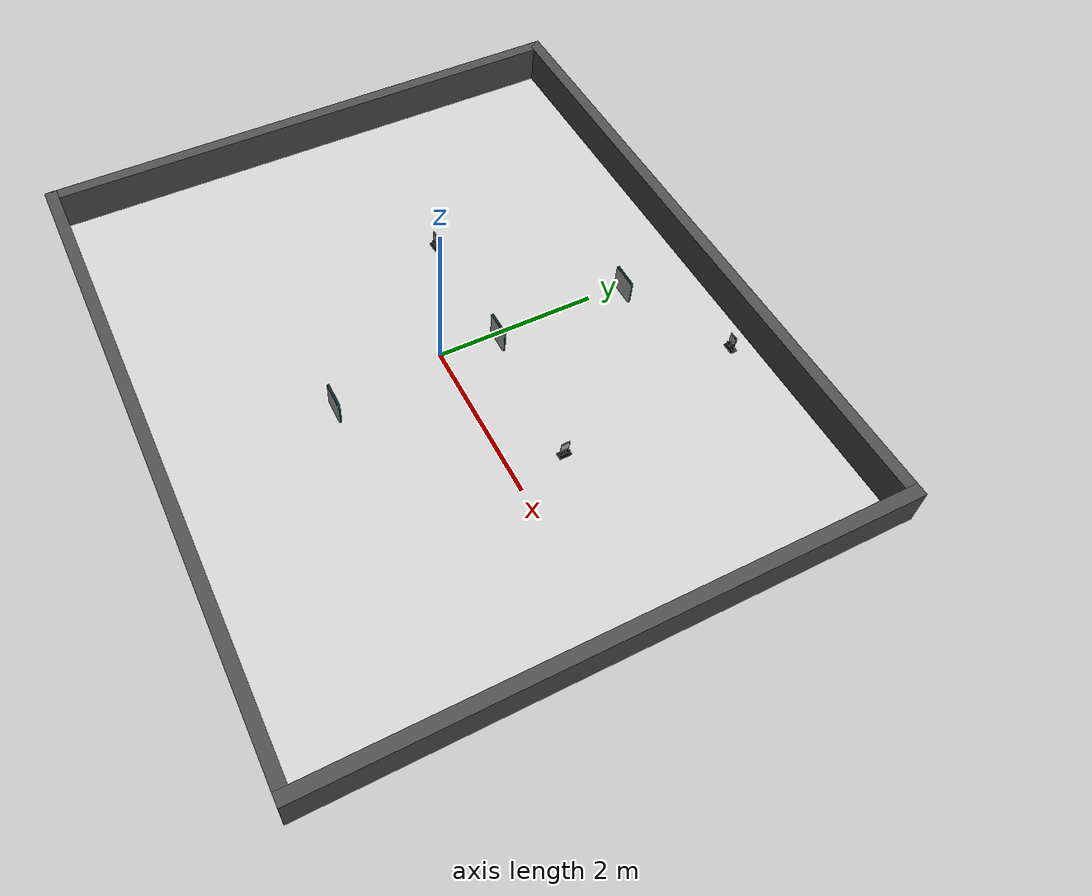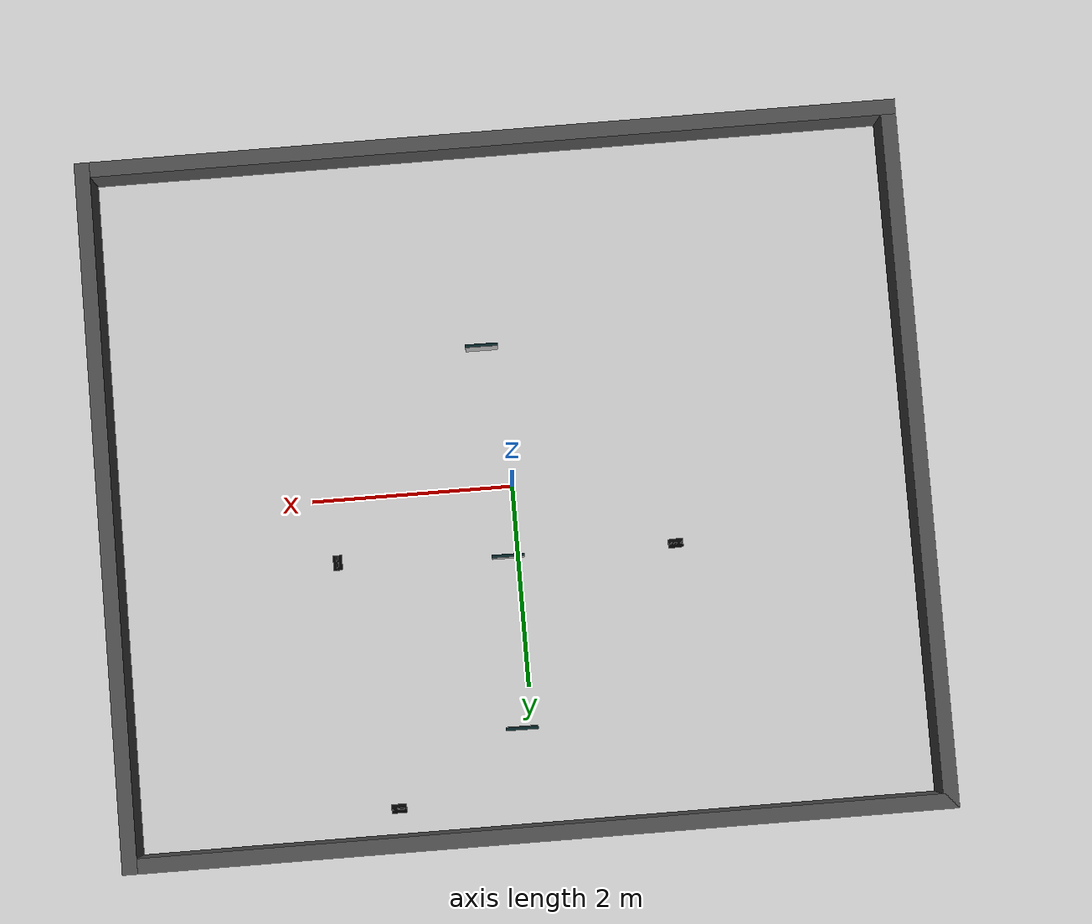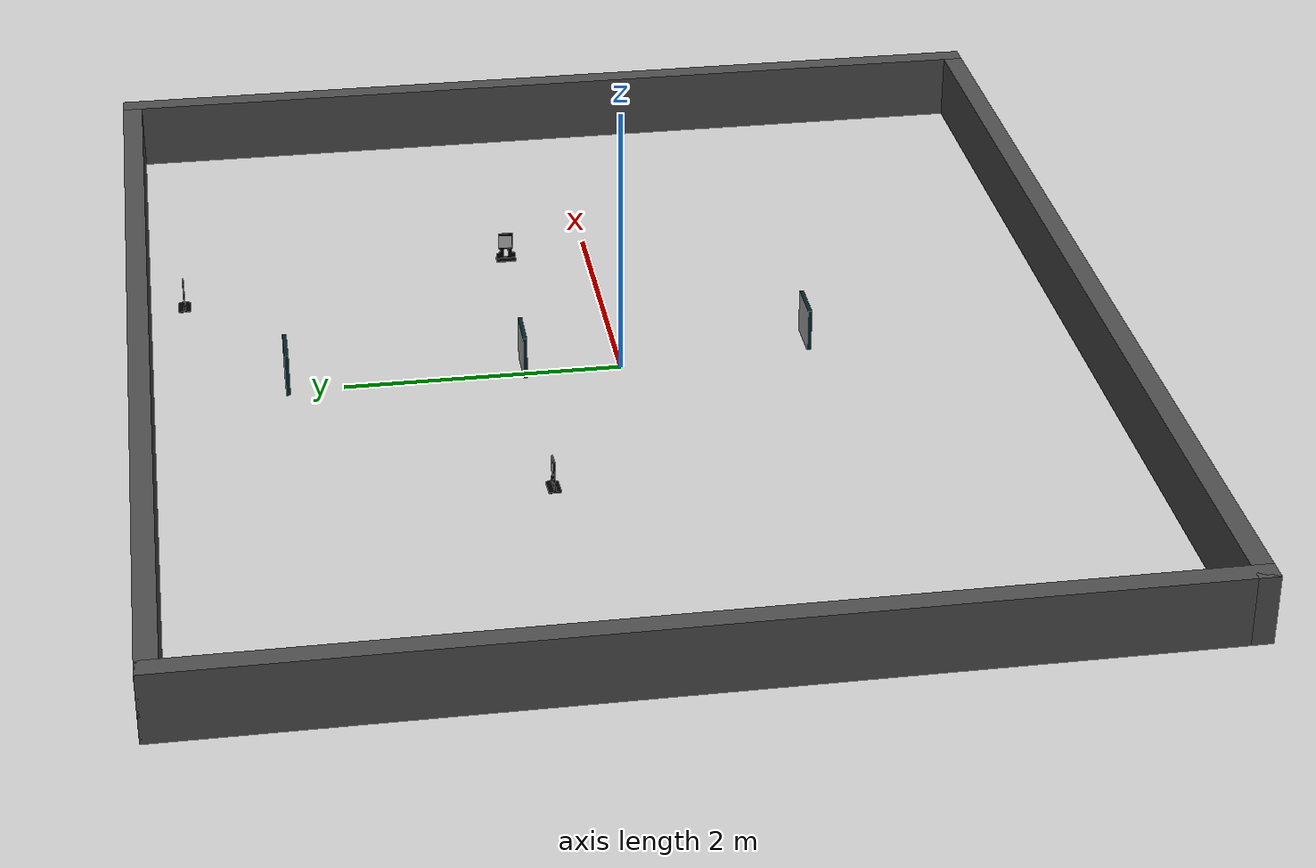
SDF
<sdf version="1.4">
 <world name="pista24B">
  <scene><ambient>0.8 0.8 0.8 1</ambient><background>0.7 0.7 0.7 1</background><shadows>true</shadows></scene>
  <include><uri>model://sun</uri><pose>-1.0 2.0 1.0 0 0 0</pose></include>
  <include><uri>model://Floors/Pista24B</uri></include>
  <include><uri>model://Walls/paredes_sala</uri><pose>4 0 0 0 0 0</pose></include>
  <include><uri>model://Creepers/toten_100</uri><pose>-1.5 0.7 0 0 0 -3.1000450</pose></include>
  <include><uri>model://Creepers/toten_150</uri><pose>1.3 3.1 0 0 0 0</pose></include>
  <include><uri>model://Creepers/toten_250</uri><pose>1.8 0.7 0 0 0 -1.554625</pose></include>
  <include><uri>model://Yolo/bicycle</uri><pose>0.2 -1.4 0 0 0 1.563530</pose></include>
  <include><uri>model://Yolo/cat</uri><pose>0.1 0.7 0 0 0 1.563530</pose></include>
  <include><uri>model://Yolo/bird</uri><pose>0.1 2.4 0 0 0 1.563530</pose></include>
  <physics type="ode">
   <real_time_update_rate>1000.0</real_time_update_rate>
   <max_step_size>0.001</max_step_size>
   <real_time_factor>1</real_time_factor>
   <ode>
    <solver>
     <type>quick</type>
     <iters>150</iters>
     <precon_iters>0</precon_iters>
     <sor>1.400000</sor>
     <use_dynamic_moi_rescaling>1</use_dynamic_moi_rescaling>
    </solver>
    <constraints>
     <cfm>0.00001</cfm>
     <erp>0.2</erp>
     <contact_max_correcting_vel>2000.000000</contact_max_correcting_vel>
     <contact_surface_layer>0.01000</contact_surface_layer>
    </constraints>
   </ode>
  </physics>
 </world>
</sdf>

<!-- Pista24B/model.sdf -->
<sdf version="1.6">
  <model name="pista24B">
    <static>true</static>
    <link name="course_link">
      <collision name="course_collision">
        <geometry>
          <plane>
            <normal>0 0 1</normal>
            <size>8 7</size>
          </plane>
        </geometry>
        <surface>
          <friction>
            <ode>
              <mu>100</mu>
              <mu2>50</mu2>
            </ode>
          </friction>
        </surface>
      </collision>
      <visual name="course_visual">
        <cast_shadows>true</cast_shadows>
        <geometry>
	        <plane>
            <normal>0 0 1</normal>
            <size>8 7</size>
          </plane>
        </geometry>
	      <material>
          <script>
            <uri>model://Floors/Pista24B/materials/scripts</uri>
            <uri>model://Floors/Pista24B/materials/textures</uri>
            <name>pisosala</name>
          </script>
        </material>
      </visual>
    </link>
  </model>
</sdf>

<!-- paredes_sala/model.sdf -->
<sdf version='1.7'>
  <model name='parede'>
    <link name='Wall_0'>
      <pose>-4.075 -3.425 0.25 0 0 0</pose>
      <self_collide>0</self_collide>
      <enable_wind>0</enable_wind>
      <kinematic>0</kinematic>
      <visual name='Wall_0_Visual'>
        <geometry>
          <box>
            <size>8 0.15 0.5</size>
          </box>
        </geometry>
        <material>
          <script>
            <uri>file://media/materials/scripts/gazebo.material</uri>
            <name>Gazebo/DarkGrey</name>
          </script>
          <ambient>0.5 0.5 0.5 1</ambient>
          <diffuse>1 1 1 1</diffuse>
          <specular>0.2 0.2 0.2 1</specular>
          <emissive>0 0 0 1</emissive>
          <shader type='pixel'/>
        </material>
      </visual>
      <collision name='Wall_0_Collision'>
        <laser_retro>0</laser_retro>
        <max_contacts>10</max_contacts>
        <geometry>
          <box>
            <size>8 0.15 0.5</size>
          </box>
        </geometry>
        <surface>
          <friction>
            <ode>
              <mu>1</mu>
              <mu2>1</mu2>
              <fdir1>0 0 0</fdir1>
              <slip1>0</slip1>
              <slip2>0</slip2>
            </ode>
            <torsional>
              <coefficient>1</coefficient>
              <patch_radius>0</patch_radius>
              <surface_radius>0</surface_radius>
              <use_patch_radius>1</use_patch_radius>
              <ode>
                <slip>0</slip>
              </ode>
            </torsional>
          </friction>
          <bounce>
            <restitution_coefficient>0</restitution_coefficient>
            <threshold>1e+06</threshold>
          </bounce>
          <contact>
            <collide_without_contact>0</collide_without_contact>
            <collide_without_contact_bitmask>1</collide_without_contact_bitmask>
            <collide_bitmask>1</collide_bitmask>
            <ode>
              <soft_cfm>0</soft_cfm>
              <soft_erp>0.2</soft_erp>
              <kp>1e+13</kp>
              <kd>1</kd>
              <max_vel>0.01</max_vel>
              <min_depth>0</min_depth>
            </ode>
            <bullet>
              <split_impulse>1</split_impulse>
              <split_impulse_penetration_threshold>-0.01</split_impulse_penetration_threshold>
              <soft_cfm>0</soft_cfm>
              <soft_erp>0.2</soft_erp>
              <kp>1e+13</kp>
              <kd>1</kd>
            </bullet>
          </contact>
        </surface>
      </collision>
    </link>
    <link name='Wall_1'>
      <pose>0 0 0.25 0 0 0</pose>
      <self_collide>0</self_collide>
      <kinematic>0</kinematic>
      <visual name='Wall_1_Visual'>
        <geometry>
          <box>
            <size>0.15 7 0.5</size>
          </box>
        </geometry>
        <material>
          <script>
            <uri>file://media/materials/scripts/gazebo.material</uri>
            <name>Gazebo/DarkGrey</name>
          </script>
          <ambient>0.5 0.5 0.5 1</ambient>
          <diffuse>1 1 1 1</diffuse>
          <specular>0.2 0.2 0.2 1</specular>
          <emissive>0 0 0 1</emissive>
        </material>
        <transparency>0</transparency>
        <cast_shadows>1</cast_shadows>
      </visual>
      <collision name='Wall_1_Collision'>
        <laser_retro>0</laser_retro>
        <max_contacts>10</max_contacts>
        <geometry>
          <box>
            <size>0.15 7 0.5</size>
          </box>
        </geometry>
        <surface>
          <friction>
            <ode>
              <mu>1</mu>
              <mu2>1</mu2>
              <fdir1>0 0 0</fdir1>
              <slip1>0</slip1>
              <slip2>0</slip2>
            </ode>
            <torsional>
              <coefficient>1</coefficient>
              <patch_radius>0</patch_radius>
              <surface_radius>0</surface_radius>
              <use_patch_radius>1</use_patch_radius>
              <ode>
                <slip>0</slip>
              </ode>
            </torsional>
          </friction>
          <bounce>
            <restitution_coefficient>0</restitution_coefficient>
            <threshold>1e+06</threshold>
          </bounce>
          <contact>
            <collide_without_contact>0</collide_without_contact>
            <collide_without_contact_bitmask>1</collide_without_contact_bitmask>
            <ode>
              <soft_cfm>0</soft_cfm>
              <soft_erp>0.2</soft_erp>
              <kp>1e+13</kp>
              <kd>1</kd>
              <max_vel>0.01</max_vel>
              <min_depth>0</min_depth>
            </ode>
            <bullet>
              <split_impulse>1</split_impulse>
              <split_impulse_penetration_threshold>-0.01</split_impulse_penetration_threshold>
              <soft_cfm>0</soft_cfm>
              <soft_erp>0.2</soft_erp>
              <kp>1e+13</kp>
              <kd>1</kd>
            </bullet>
          </contact>
        </surface>
      </collision>
    </link>
    <link name='Wall_2'>
      <pose>-8 0 0.25 0 0 0 0</pose>
      <self_collide>0</self_collide>
      <enable_wind>0</enable_wind>
      <kinematic>0</kinematic>
      <visual name='Wall_2_Visual'>
        <geometry>
          <box>
            <size>0.15 7 0.5</size>
          </box>
        </geometry>
        <material>
          <script>
            <uri>file://media/materials/scripts/gazebo.material</uri>
            <name>Gazebo/DarkGrey</name>
          </script>
          <ambient>0.5 0.5 0.5 1</ambient>
          <diffuse>1 1 1 1</diffuse>
          <specular>0.2 0.2 0.2 1</specular>
          <emissive>0 0 0 1</emissive>
          <shader type='pixel'/>
        </material>
        <meta>
          <layer>0</layer>
        </meta>
        <transparency>0</transparency>
        <cast_shadows>1</cast_shadows>
      </visual>
      <collision name='Wall_2_Collision'>
        <laser_retro>0</laser_retro>
        <max_contacts>10</max_contacts>
        <geometry>
          <box>
            <size>0.15 7 0.5</size>
          </box>
        </geometry>
        <surface>
          <friction>
            <ode>
              <mu>1</mu>
              <mu2>1</mu2>
              <fdir1>0 0 0</fdir1>
              <slip1>0</slip1>
              <slip2>0</slip2>
            </ode>
            <torsional>
              <coefficient>1</coefficient>
              <patch_radius>0</patch_radius>
              <surface_radius>0</surface_radius>
              <use_patch_radius>1</use_patch_radius>
              <ode>
                <slip>0</slip>
              </ode>
            </torsional>
          </friction>
          <bounce>
            <restitution_coefficient>0</restitution_coefficient>
            <threshold>1e+06</threshold>
          </bounce>
          <contact>
            <collide_without_contact>0</collide_without_contact>
            <collide_without_contact_bitmask>1</collide_without_contact_bitmask>
            <collide_bitmask>1</collide_bitmask>
            <ode>
              <soft_cfm>0</soft_cfm>
              <soft_erp>0.2</soft_erp>
              <kp>1e+13</kp>
              <kd>1</kd>
              <max_vel>0.01</max_vel>
              <min_depth>0</min_depth>
            </ode>
            <bullet>
              <split_impulse>1</split_impulse>
              <split_impulse_penetration_threshold>-0.01</split_impulse_penetration_threshold>
              <soft_cfm>0</soft_cfm>
              <soft_erp>0.2</soft_erp>
              <kp>1e+13</kp>
              <kd>1</kd>
            </bullet>
          </contact>
        </surface>
      </collision>
    </link>
    <link name='Wall_3'>
      <pose>-4.075 3.425 0.25 0 0 0</pose>
      <self_collide>0</self_collide>
      <enable_wind>0</enable_wind>
      <kinematic>0</kinematic>
      <visual name='Wall_3_Visual'>
        <geometry>
          <box>
            <size>8 0.15 0.5</size>
          </box>
        </geometry>
        <material>
          <script>
            <uri>file://media/materials/scripts/gazebo.material</uri>
            <name>Gazebo/DarkGrey</name>
          </script>
          <ambient>0.5 0.5 0.5 1</ambient>
          <diffuse>1 1 1 1</diffuse>
          <specular>0.2 0.2 0.2 1</specular>
          <emissive>0 0 0 1</emissive>
          <shader type='pixel'/>
        </material>
        <meta>
          <layer>0</layer>
        </meta>
        <transparency>0</transparency>
        <cast_shadows>1</cast_shadows>
      </visual>
      <collision name='Wall_3_Collision'>
        <laser_retro>0</laser_retro>
        <max_contacts>10</max_contacts>
        <geometry>
          <box>
            <size>8 0.15 0.5</size>
          </box>
        </geometry>
        <surface>
          <friction>
            <ode>
              <mu>1</mu>
              <mu2>1</mu2>
              <fdir1>0 0 0</fdir1>
              <slip1>0</slip1>
              <slip2>0</slip2>
            </ode>
            <torsional>
              <coefficient>1</coefficient>
              <patch_radius>0</patch_radius>
              <surface_radius>0</surface_radius>
              <use_patch_radius>1</use_patch_radius>
              <ode>
                <slip>0</slip>
              </ode>
            </torsional>
          </friction>
          <bounce>
            <restitution_coefficient>0</restitution_coefficient>
            <threshold>1e+06</threshold>
          </bounce>
          <contact>
            <collide_without_contact>0</collide_without_contact>
            <collide_without_contact_bitmask>1</collide_without_contact_bitmask>
            <collide_bitmask>1</collide_bitmask>
            <ode>
              <soft_cfm>0</soft_cfm>
              <soft_erp>0.2</soft_erp>
              <kp>1e+13</kp>
              <kd>1</kd>
              <max_vel>0.01</max_vel>
              <min_depth>0</min_depth>
            </ode>
            <bullet>
              <split_impulse>1</split_impulse>
              <split_impulse_penetration_threshold>-0.01</split_impulse_penetration_threshold>
              <soft_cfm>0</soft_cfm>
              <soft_erp>0.2</soft_erp>
              <kp>1e+13</kp>
              <kd>1</kd>
            </bullet>
          </contact>
        </surface>
      </collision>
    </link>
    <static>1</static>
    <allow_auto_disable>1</allow_auto_disable>
  </model>
</sdf>

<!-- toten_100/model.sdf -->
<sdf version="1.6">
  <model name="toten_100">
    <static>true</static>
    <link name="box">
      <pose>0 0 0 0 0 0</pose>
      <collision name="collision">
        <geometry>
          <mesh>
            <uri>model://Creepers/toten_100/materials/textures/toten.dae</uri>
            <scale>0.001 0.001 0.001</scale>
          </mesh>
        </geometry>
      </collision>
      <visual name='visual'>
        <pose frame=''>0 0 0 0 0 0</pose>
        <geometry>
          <mesh>
            <uri>model://Creepers/toten_100/materials/textures/toten.dae</uri>
            <scale>0.001 0.001 0.001</scale>
          </mesh>
        </geometry>
        <transparency>0</transparency>
        <cast_shadows>1</cast_shadows>
      </visual>
    </link>
  </model>
</sdf>

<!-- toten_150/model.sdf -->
<sdf version="1.6">
  <model name="toten_150">
    <static>true</static>
    <link name="box">
      <pose>0 0 0 0 0 0</pose>
      <collision name="collision">
        <geometry>
          <mesh>
            <uri>model://Creepers/toten_150/materials/textures/toten.dae</uri>
            <scale>0.001 0.001 0.001</scale>
          </mesh>
        </geometry>
      </collision>
      <visual name='visual'>
        <pose frame=''>0 0 0 0 0 0</pose>
        <geometry>
          <mesh>
            <uri>model://Creepers/toten_150/materials/textures/toten.dae</uri>
            <scale>0.001 0.001 0.001</scale>
          </mesh>
        </geometry>
        <transparency>0</transparency>
        <cast_shadows>1</cast_shadows>
      </visual>
    </link>
  </model>
</sdf>

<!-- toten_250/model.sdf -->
<sdf version="1.6">
  <model name="toten_250">
    <static>true</static>
    <link name="box">
      <pose>0 0 0 0 0 0</pose>
      <collision name="collision">
        <geometry>
          <mesh>
            <uri>model://Creepers/toten_250/materials/textures/toten.dae</uri>
            <scale>0.001 0.001 0.001</scale>
          </mesh>
        </geometry>
      </collision>
      <visual name='visual'>
        <pose frame=''>0 0 0 0 0 0</pose>
        <geometry>
          <mesh>
            <uri>model://Creepers/toten_250/materials/textures/toten.dae</uri>
            <scale>0.001 0.001 0.001</scale>
          </mesh>
        </geometry>
        <transparency>0</transparency>
        <cast_shadows>1</cast_shadows>
      </visual>
    </link>
  </model>
</sdf>

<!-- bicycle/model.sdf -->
<sdf version="1.6">
  <model name="bicycle">
    <static>true</static>
    <link name="box">
      <pose>0 0 0 0 0 0</pose>
      <collision name="collision">
        <geometry>
          <mesh>
            <uri>model://Yolo/bicycle/materials/textures/bicycle.dae</uri>
            <scale>0.3 0.4 0.4</scale>
          </mesh>
        </geometry>
      </collision>
      <visual name="visual">
        <geometry>
          <mesh>
            <uri>model://Yolo/bicycle/materials/textures/bicycle.dae</uri>
            <scale>0.3 0.4 0.4</scale>
          </mesh>
        </geometry>
      </visual>
    </link>
  </model>
</sdf>

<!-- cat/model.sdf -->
<sdf version="1.6">
  <model name="cat">
    <static>true</static>
    <link name="box">
      <pose>0 0 0 0 0 0</pose>
      <collision name="collision">
        <geometry>
          <mesh>
            <uri>model://Yolo/cat/materials/textures/cat.dae</uri>
            <scale>0.3 0.4 0.4</scale>
          </mesh>
        </geometry>
      </collision>
      <visual name="visual">
        <geometry>
          <mesh>
            <uri>model://Yolo/cat/materials/textures/cat.dae</uri>
            <scale>0.3 0.4 0.4</scale>
          </mesh>
        </geometry>
      </visual>
    </link>
  </model>
</sdf>

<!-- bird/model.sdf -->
<sdf version="1.6">
  <model name="bird">
    <static>true</static>
    <link name="box">
      <pose>0 0 0 0 0 0</pose>
      <collision name="collision">
        <geometry>
          <mesh>
            <uri>model://Yolo/bird/materials/textures/bird.dae</uri>
            <scale>0.3 0.4 0.4</scale>
          </mesh>
        </geometry>
      </collision>
      <visual name="visual">
        <geometry>
          <mesh>
            <uri>model://Yolo/bird/materials/textures/bird.dae</uri>
            <scale>0.3 0.4 0.4</scale>
          </mesh>
        </geometry>
      </visual>
    </link>
  </model>
</sdf>
